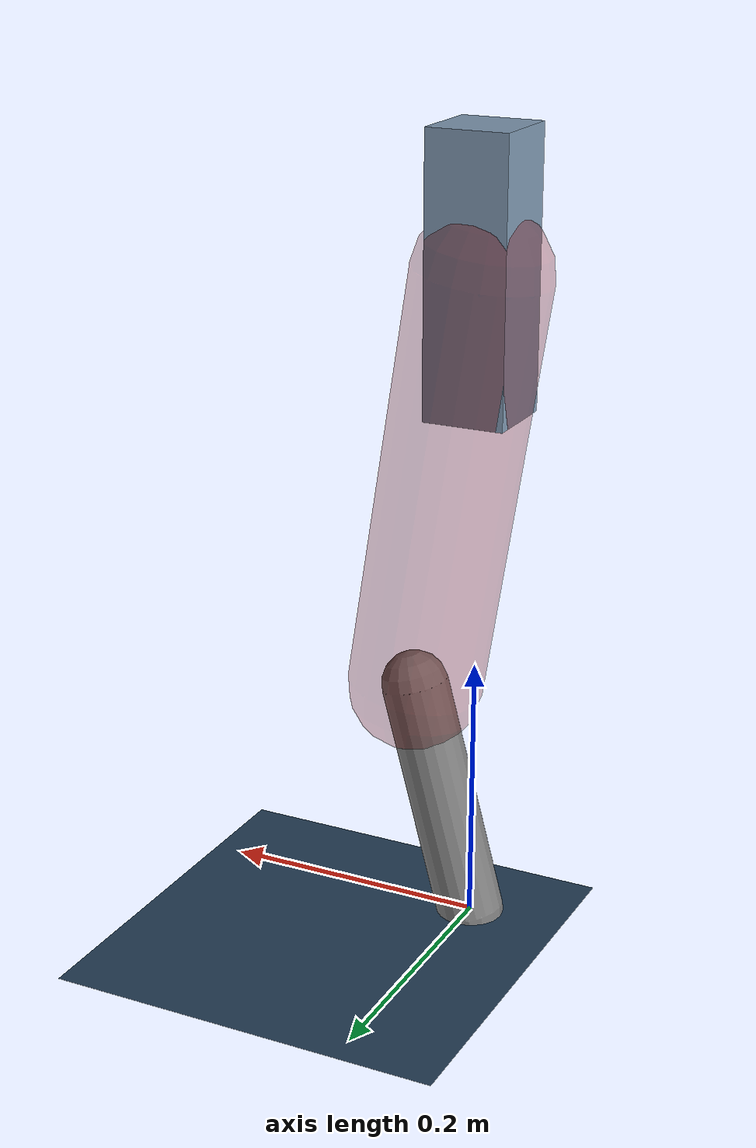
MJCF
<mujoco model="Hopper2D">
	<compiler inertiafromgeom="true" angle="radian" />
	<option timestep="0.001" integrator="implicit" cone="elliptic" solver="Newton" tolerance="1e-10" />

	<default>
		<geom contype="1" conaffinity="1" condim="3" friction="2 0.005 0.0001" solref="0.005 1" />
		<joint limited="true" damping="0.1" />
	</default>

	<asset>
		<texture name="skybox" type="skybox" builtin="gradient" rgb1=".4 .6 .8" rgb2="0 0 0" width="800" height="800" />
		<texture name="grid" type="2d" builtin="checker" rgb1=".1 .2 .3" rgb2=".2 .3 .4" width="300" height="300" mark="edge" markrgb=".2 .3 .4" />
		<material name="ground" texture="grid" texrepeat="1 1" texuniform="true" reflectance="0.1" />
		<material name="leg" rgba="0.5 0.6 0.7 1" />
	</asset>

	<worldbody>

		<geom name="floor" type="plane" size="5 5 0.25" material="ground" />

		<light directional="false" diffuse="0.8 0.8 0.8" specular="0.3 0.3 0.3" pos="0 0 2" dir="0 0 -1" />
		<light mode="targetbodycom" target="base" directional="false" diffuse="0.8 0.8 0.8" specular="0.3 0.3 0.3" pos="0 0 2" dir="0 0 -1" />

		<camera name="fixed" pos="0 -2 1" xyaxes="1 0 0 0 0 1" />
		<camera name="tracking" mode="trackcom" pos="0 -3 1" />

		<body name="root" pos="0 0 0.4872394732866573">
			<joint name="slide_x" type="slide" axis="1 0 0" range="-100 100" />
			<joint name="slide_z" type="slide" axis="0 0 1" range="0 10" />

			<body name="base" pos="0 0 0">
				<geom name="torso" type="box" size="0.03 0.03 0.1" mass="2.435" material="leg" />

				<body name="link1" pos="0 0 0" euler="0 1.4181270357482139 0">
					<joint type="hinge" axis="0 -1 0" pos="0 0 0" name="hinge1" limited="true" range="-3.14 3.14" stiffness="0" damping="0.1" />
					<geom name="thigh" type="capsule" fromto="0 0 0 0.31418377019065225 0 0" size="0.05" rgba="0.5 0 0 0.3" mass="1.027296179514761" />

					<body name="link2" pos="0.31418377019065225 0 0" euler="0 0.4167417414012495 0">
						<joint type="hinge" axis="0 -1 0" pos="0 0 0" name="hinge2" limited="true" range="-3.14 3.14" stiffness="0" damping="0.1" />
						<geom name="shank" type="capsule" fromto="0 0 0 0.18305570309600502 0 0" size="0.025" mass="0.386544562476804" />

					</body>
				</body>
			</body>
		</body>
	</worldbody>

	<actuator>
		<motor name="torque1" joint="hinge1" ctrlrange="-72.6454738853743 72.6454738853743" ctrllimited="true" gear="1" />
		<motor name="torque2" joint="hinge2" ctrlrange="-99.56737245568871 99.56737245568871" ctrllimited="true" gear="1" />
	</actuator>
</mujoco>
